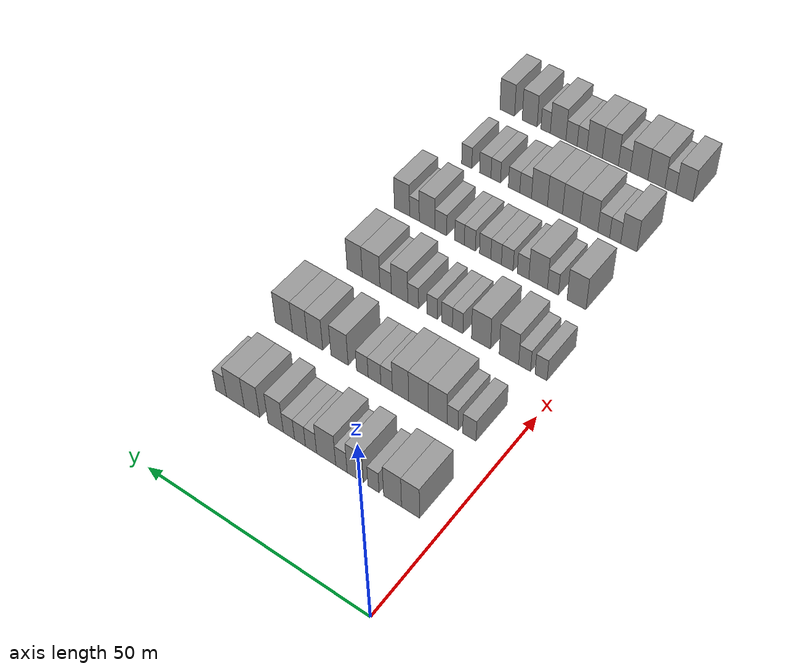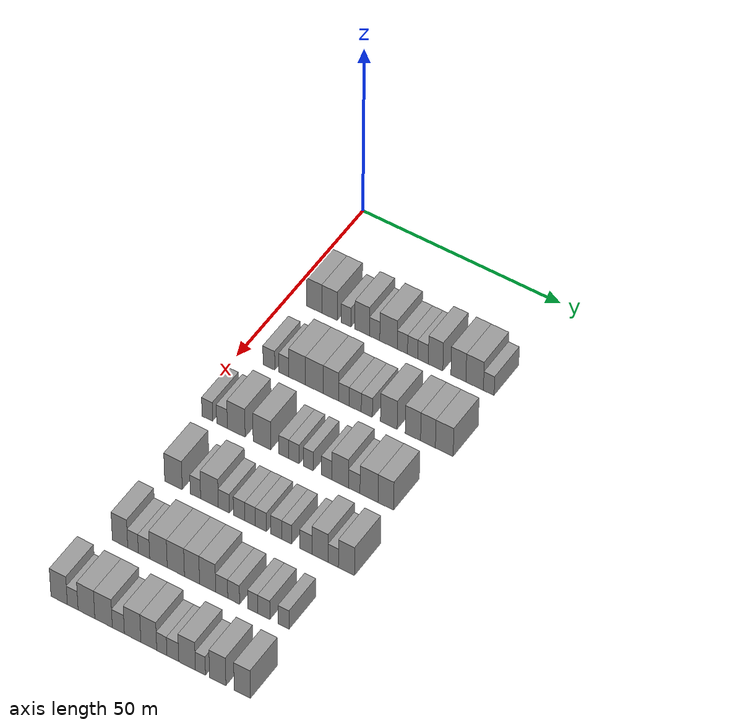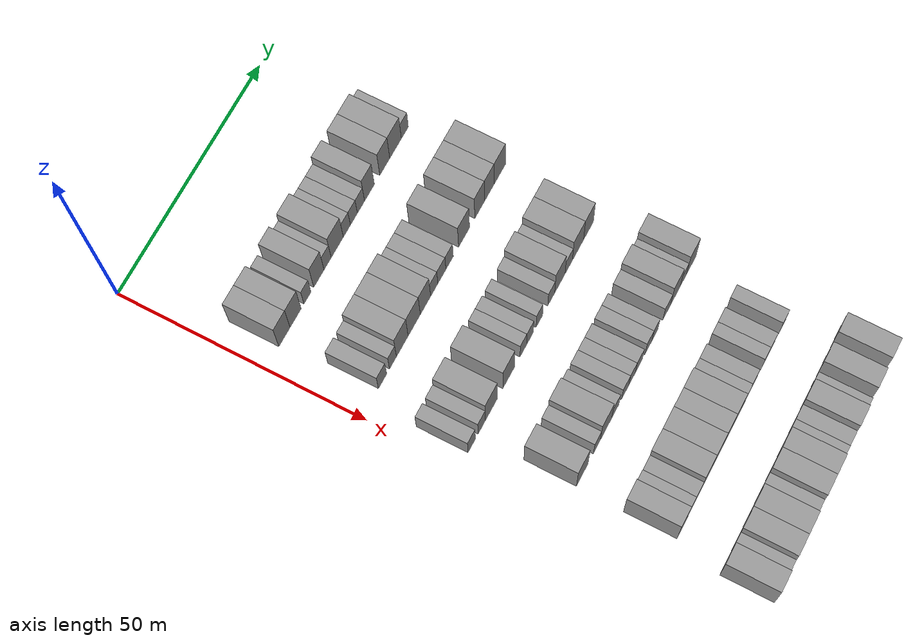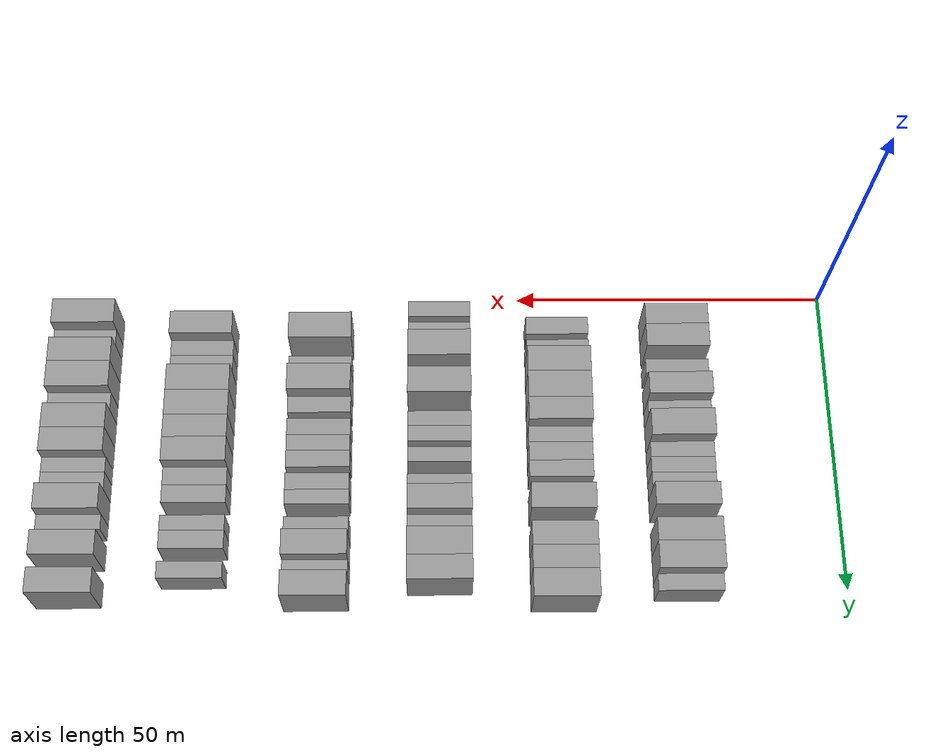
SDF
<sdf version="1.6">
 <world name="default">
  <model name="building_89">
   <static>1</static>
   <pose>25.0000 6.5976 0 0.000000 0.000000 0.000000</pose>
   <link name="link">
    <pose>0 0 4.50 0 0 0</pose>
    <collision name="collision"><geometry><box><size>10.0000 3.9193 9.0000</size></box></geometry></collision>
    <visual name="visual">
     <cast_shadows>0</cast_shadows>
     <geometry><box><size>10.0000 3.9193 9.0000</size></box></geometry>
     <material>
      <script>
       <uri>model://grey_wall/materials/scripts</uri>
       <uri>model://grey_wall/materials/textures</uri>
       <name>vrc/grey_wall</name>
      </script>
     </material>
    </visual>
   </link>
  </model>
  <model name="building_90">
   <static>1</static>
   <pose>25.0000 10.5213 0 0.000000 0.000000 0.000000</pose>
   <link name="link">
    <pose>0 0 4.50 0 0 0</pose>
    <collision name="collision"><geometry><box><size>10.0000 3.9281 9.0000</size></box></geometry></collision>
    <visual name="visual">
     <cast_shadows>0</cast_shadows>
     <geometry><box><size>10.0000 3.9281 9.0000</size></box></geometry>
     <material>
      <script>
       <uri>model://grey_wall/materials/scripts</uri>
       <uri>model://grey_wall/materials/textures</uri>
       <name>vrc/grey_wall</name>
      </script>
     </material>
    </visual>
   </link>
  </model>
  <model name="building_91">
   <static>1</static>
   <pose>25.0000 14.7238 0 0.000000 0.000000 0.000000</pose>
   <link name="link">
    <pose>0 0 3.00 0 0 0</pose>
    <collision name="collision"><geometry><box><size>10.0000 2.4768 6.0000</size></box></geometry></collision>
    <visual name="visual">
     <cast_shadows>0</cast_shadows>
     <geometry><box><size>10.0000 2.4768 6.0000</size></box></geometry>
     <material>
      <script>
       <uri>model://grey_wall/materials/scripts</uri>
       <uri>model://grey_wall/materials/textures</uri>
       <name>vrc/grey_wall</name>
      </script>
     </material>
    </visual>
   </link>
  </model>
  <model name="building_92">
   <static>1</static>
   <pose>25.0000 18.7980 0 0.000000 0.000000 0.000000</pose>
   <link name="link">
    <pose>0 0 4.50 0 0 0</pose>
    <collision name="collision"><geometry><box><size>10.0000 3.6717 9.0000</size></box></geometry></collision>
    <visual name="visual">
     <cast_shadows>0</cast_shadows>
     <geometry><box><size>10.0000 3.6717 9.0000</size></box></geometry>
     <material>
      <script>
       <uri>model://grey_wall/materials/scripts</uri>
       <uri>model://grey_wall/materials/textures</uri>
       <name>vrc/grey_wall</name>
      </script>
     </material>
    </visual>
   </link>
  </model>
  <model name="building_93">
   <static>1</static>
   <pose>25.0000 21.9282 0 0.000000 0.000000 0.000000</pose>
   <link name="link">
    <pose>0 0 3.00 0 0 0</pose>
    <collision name="collision"><geometry><box><size>10.0000 2.5887 6.0000</size></box></geometry></collision>
    <visual name="visual">
     <cast_shadows>0</cast_shadows>
     <geometry><box><size>10.0000 2.5887 6.0000</size></box></geometry>
     <material>
      <script>
       <uri>model://grey_wall/materials/scripts</uri>
       <uri>model://grey_wall/materials/textures</uri>
       <name>vrc/grey_wall</name>
      </script>
     </material>
    </visual>
   </link>
  </model>
  <model name="building_94">
   <static>1</static>
   <pose>25.0000 25.4164 0 0.000000 0.000000 0.000000</pose>
   <link name="link">
    <pose>0 0 4.50 0 0 0</pose>
    <collision name="collision"><geometry><box><size>10.0000 4.3876 9.0000</size></box></geometry></collision>
    <visual name="visual">
     <cast_shadows>0</cast_shadows>
     <geometry><box><size>10.0000 4.3876 9.0000</size></box></geometry>
     <material>
      <script>
       <uri>model://grey_wall/materials/scripts</uri>
       <uri>model://grey_wall/materials/textures</uri>
       <name>vrc/grey_wall</name>
      </script>
     </material>
    </visual>
   </link>
  </model>
  <model name="building_95">
   <static>1</static>
   <pose>25.0000 28.9024 0 0.000000 0.000000 0.000000</pose>
   <link name="link">
    <pose>0 0 3.00 0 0 0</pose>
    <collision name="collision"><geometry><box><size>10.0000 2.5844 6.0000</size></box></geometry></collision>
    <visual name="visual">
     <cast_shadows>0</cast_shadows>
     <geometry><box><size>10.0000 2.5844 6.0000</size></box></geometry>
     <material>
      <script>
       <uri>model://grey_wall/materials/scripts</uri>
       <uri>model://grey_wall/materials/textures</uri>
       <name>vrc/grey_wall</name>
      </script>
     </material>
    </visual>
   </link>
  </model>
  <model name="building_96">
   <static>1</static>
   <pose>25.0000 31.4725 0 0.000000 0.000000 0.000000</pose>
   <link name="link">
    <pose>0 0 3.00 0 0 0</pose>
    <collision name="collision"><geometry><box><size>10.0000 2.5557 6.0000</size></box></geometry></collision>
    <visual name="visual">
     <cast_shadows>0</cast_shadows>
     <geometry><box><size>10.0000 2.5557 6.0000</size></box></geometry>
     <material>
      <script>
       <uri>model://grey_wall/materials/scripts</uri>
       <uri>model://grey_wall/materials/textures</uri>
       <name>vrc/grey_wall</name>
      </script>
     </material>
    </visual>
   </link>
  </model>
  <model name="building_97">
   <static>1</static>
   <pose>25.0000 34.0715 0 0.000000 0.000000 0.000000</pose>
   <link name="link">
    <pose>0 0 3.00 0 0 0</pose>
    <collision name="collision"><geometry><box><size>10.0000 2.6424 6.0000</size></box></geometry></collision>
    <visual name="visual">
     <cast_shadows>0</cast_shadows>
     <geometry><box><size>10.0000 2.6424 6.0000</size></box></geometry>
     <material>
      <script>
       <uri>model://grey_wall/materials/scripts</uri>
       <uri>model://grey_wall/materials/textures</uri>
       <name>vrc/grey_wall</name>
      </script>
     </material>
    </visual>
   </link>
  </model>
  <model name="building_98">
   <static>1</static>
   <pose>25.0000 37.2081 0 0.000000 0.000000 0.000000</pose>
   <link name="link">
    <pose>0 0 4.50 0 0 0</pose>
    <collision name="collision"><geometry><box><size>10.0000 3.6308 9.0000</size></box></geometry></collision>
    <visual name="visual">
     <cast_shadows>0</cast_shadows>
     <geometry><box><size>10.0000 3.6308 9.0000</size></box></geometry>
     <material>
      <script>
       <uri>model://grey_wall/materials/scripts</uri>
       <uri>model://grey_wall/materials/textures</uri>
       <name>vrc/grey_wall</name>
      </script>
     </material>
    </visual>
   </link>
  </model>
  <model name="building_99">
   <static>1</static>
   <pose>25.0000 42.8859 0 0.000000 0.000000 0.000000</pose>
   <link name="link">
    <pose>0 0 4.50 0 0 0</pose>
    <collision name="collision"><geometry><box><size>10.0000 3.7246 9.0000</size></box></geometry></collision>
    <visual name="visual">
     <cast_shadows>0</cast_shadows>
     <geometry><box><size>10.0000 3.7246 9.0000</size></box></geometry>
     <material>
      <script>
       <uri>model://grey_wall/materials/scripts</uri>
       <uri>model://grey_wall/materials/textures</uri>
       <name>vrc/grey_wall</name>
      </script>
     </material>
    </visual>
   </link>
  </model>
  <model name="building_100">
   <static>1</static>
   <pose>25.0000 46.9236 0 0.000000 0.000000 0.000000</pose>
   <link name="link">
    <pose>0 0 4.50 0 0 0</pose>
    <collision name="collision"><geometry><box><size>10.0000 4.3510 9.0000</size></box></geometry></collision>
    <visual name="visual">
     <cast_shadows>0</cast_shadows>
     <geometry><box><size>10.0000 4.3510 9.0000</size></box></geometry>
     <material>
      <script>
       <uri>model://grey_wall/materials/scripts</uri>
       <uri>model://grey_wall/materials/textures</uri>
       <name>vrc/grey_wall</name>
      </script>
     </material>
    </visual>
   </link>
  </model>
  <model name="building_101">
   <static>1</static>
   <pose>25.0000 50.4262 0 0.000000 0.000000 0.000000</pose>
   <link name="link">
    <pose>0 0 3.00 0 0 0</pose>
    <collision name="collision"><geometry><box><size>10.0000 2.6542 6.0000</size></box></geometry></collision>
    <visual name="visual">
     <cast_shadows>0</cast_shadows>
     <geometry><box><size>10.0000 2.6542 6.0000</size></box></geometry>
     <material>
      <script>
       <uri>model://grey_wall/materials/scripts</uri>
       <uri>model://grey_wall/materials/textures</uri>
       <name>vrc/grey_wall</name>
      </script>
     </material>
    </visual>
   </link>
  </model>
  <model name="building_255">
   <static>1</static>
   <pose>44.0000 7.4499 0 0.000000 0.000000 0.000000</pose>
   <link name="link">
    <pose>0 0 3.00 0 0 0</pose>
    <collision name="collision"><geometry><box><size>10.0000 2.9787 6.0000</size></box></geometry></collision>
    <visual name="visual">
     <cast_shadows>0</cast_shadows>
     <geometry><box><size>10.0000 2.9787 6.0000</size></box></geometry>
     <material>
      <script>
       <uri>model://grey_wall/materials/scripts</uri>
       <uri>model://grey_wall/materials/textures</uri>
       <name>vrc/grey_wall</name>
      </script>
     </material>
    </visual>
   </link>
  </model>
  <model name="building_256">
   <static>1</static>
   <pose>44.0000 11.1920 0 0.000000 0.000000 0.000000</pose>
   <link name="link">
    <pose>0 0 3.00 0 0 0</pose>
    <collision name="collision"><geometry><box><size>10.0000 2.5054 6.0000</size></box></geometry></collision>
    <visual name="visual">
     <cast_shadows>0</cast_shadows>
     <geometry><box><size>10.0000 2.5054 6.0000</size></box></geometry>
     <material>
      <script>
       <uri>model://grey_wall/materials/scripts</uri>
       <uri>model://grey_wall/materials/textures</uri>
       <name>vrc/grey_wall</name>
      </script>
     </material>
    </visual>
   </link>
  </model>
  <model name="building_257">
   <static>1</static>
   <pose>44.0000 14.5626 0 0.000000 0.000000 0.000000</pose>
   <link name="link">
    <pose>0 0 4.50 0 0 0</pose>
    <collision name="collision"><geometry><box><size>10.0000 4.2358 9.0000</size></box></geometry></collision>
    <visual name="visual">
     <cast_shadows>0</cast_shadows>
     <geometry><box><size>10.0000 4.2358 9.0000</size></box></geometry>
     <material>
      <script>
       <uri>model://grey_wall/materials/scripts</uri>
       <uri>model://grey_wall/materials/textures</uri>
       <name>vrc/grey_wall</name>
      </script>
     </material>
    </visual>
   </link>
  </model>
  <model name="building_258">
   <static>1</static>
   <pose>44.0000 18.9139 0 0.000000 0.000000 0.000000</pose>
   <link name="link">
    <pose>0 0 4.50 0 0 0</pose>
    <collision name="collision"><geometry><box><size>10.0000 4.4668 9.0000</size></box></geometry></collision>
    <visual name="visual">
     <cast_shadows>0</cast_shadows>
     <geometry><box><size>10.0000 4.4668 9.0000</size></box></geometry>
     <material>
      <script>
       <uri>model://grey_wall/materials/scripts</uri>
       <uri>model://grey_wall/materials/textures</uri>
       <name>vrc/grey_wall</name>
      </script>
     </material>
    </visual>
   </link>
  </model>
  <model name="building_259">
   <static>1</static>
   <pose>44.0000 23.0418 0 0.000000 0.000000 0.000000</pose>
   <link name="link">
    <pose>0 0 4.50 0 0 0</pose>
    <collision name="collision"><geometry><box><size>10.0000 3.7891 9.0000</size></box></geometry></collision>
    <visual name="visual">
     <cast_shadows>0</cast_shadows>
     <geometry><box><size>10.0000 3.7891 9.0000</size></box></geometry>
     <material>
      <script>
       <uri>model://grey_wall/materials/scripts</uri>
       <uri>model://grey_wall/materials/textures</uri>
       <name>vrc/grey_wall</name>
      </script>
     </material>
    </visual>
   </link>
  </model>
  <model name="building_260">
   <static>1</static>
   <pose>44.0000 26.2802 0 0.000000 0.000000 0.000000</pose>
   <link name="link">
    <pose>0 0 3.00 0 0 0</pose>
    <collision name="collision"><geometry><box><size>10.0000 2.6877 6.0000</size></box></geometry></collision>
    <visual name="visual">
     <cast_shadows>0</cast_shadows>
     <geometry><box><size>10.0000 2.6877 6.0000</size></box></geometry>
     <material>
      <script>
       <uri>model://grey_wall/materials/scripts</uri>
       <uri>model://grey_wall/materials/textures</uri>
       <name>vrc/grey_wall</name>
      </script>
     </material>
    </visual>
   </link>
  </model>
  <model name="building_261">
   <static>1</static>
   <pose>44.0000 29.1234 0 0.000000 0.000000 0.000000</pose>
   <link name="link">
    <pose>0 0 3.00 0 0 0</pose>
    <collision name="collision"><geometry><box><size>10.0000 2.9987 6.0000</size></box></geometry></collision>
    <visual name="visual">
     <cast_shadows>0</cast_shadows>
     <geometry><box><size>10.0000 2.9987 6.0000</size></box></geometry>
     <material>
      <script>
       <uri>model://grey_wall/materials/scripts</uri>
       <uri>model://grey_wall/materials/textures</uri>
       <name>vrc/grey_wall</name>
      </script>
     </material>
    </visual>
   </link>
  </model>
  <model name="building_262">
   <static>1</static>
   <pose>44.0000 32.0087 0 0.000000 0.000000 0.000000</pose>
   <link name="link">
    <pose>0 0 3.00 0 0 0</pose>
    <collision name="collision"><geometry><box><size>10.0000 2.7720 6.0000</size></box></geometry></collision>
    <visual name="visual">
     <cast_shadows>0</cast_shadows>
     <geometry><box><size>10.0000 2.7720 6.0000</size></box></geometry>
     <material>
      <script>
       <uri>model://grey_wall/materials/scripts</uri>
       <uri>model://grey_wall/materials/textures</uri>
       <name>vrc/grey_wall</name>
      </script>
     </material>
    </visual>
   </link>
  </model>
  <model name="building_263">
   <static>1</static>
   <pose>44.0000 37.4664 0 0.000000 0.000000 0.000000</pose>
   <link name="link">
    <pose>0 0 4.50 0 0 0</pose>
    <collision name="collision"><geometry><box><size>10.0000 4.1434 9.0000</size></box></geometry></collision>
    <visual name="visual">
     <cast_shadows>0</cast_shadows>
     <geometry><box><size>10.0000 4.1434 9.0000</size></box></geometry>
     <material>
      <script>
       <uri>model://grey_wall/materials/scripts</uri>
       <uri>model://grey_wall/materials/textures</uri>
       <name>vrc/grey_wall</name>
      </script>
     </material>
    </visual>
   </link>
  </model>
  <model name="building_264">
   <static>1</static>
   <pose>44.0000 43.4358 0 0.000000 0.000000 0.000000</pose>
   <link name="link">
    <pose>0 0 4.50 0 0 0</pose>
    <collision name="collision"><geometry><box><size>10.0000 3.7956 9.0000</size></box></geometry></collision>
    <visual name="visual">
     <cast_shadows>0</cast_shadows>
     <geometry><box><size>10.0000 3.7956 9.0000</size></box></geometry>
     <material>
      <script>
       <uri>model://grey_wall/materials/scripts</uri>
       <uri>model://grey_wall/materials/textures</uri>
       <name>vrc/grey_wall</name>
      </script>
     </material>
    </visual>
   </link>
  </model>
  <model name="building_265">
   <static>1</static>
   <pose>44.0000 47.1627 0 0.000000 0.000000 0.000000</pose>
   <link name="link">
    <pose>0 0 4.50 0 0 0</pose>
    <collision name="collision"><geometry><box><size>10.0000 3.6581 9.0000</size></box></geometry></collision>
    <visual name="visual">
     <cast_shadows>0</cast_shadows>
     <geometry><box><size>10.0000 3.6581 9.0000</size></box></geometry>
     <material>
      <script>
       <uri>model://grey_wall/materials/scripts</uri>
       <uri>model://grey_wall/materials/textures</uri>
       <name>vrc/grey_wall</name>
      </script>
     </material>
    </visual>
   </link>
  </model>
  <model name="building_266">
   <static>1</static>
   <pose>44.0000 51.1775 0 0.000000 0.000000 0.000000</pose>
   <link name="link">
    <pose>0 0 4.50 0 0 0</pose>
    <collision name="collision"><geometry><box><size>10.0000 4.3716 9.0000</size></box></geometry></collision>
    <visual name="visual">
     <cast_shadows>0</cast_shadows>
     <geometry><box><size>10.0000 4.3716 9.0000</size></box></geometry>
     <material>
      <script>
       <uri>model://grey_wall/materials/scripts</uri>
       <uri>model://grey_wall/materials/textures</uri>
       <name>vrc/grey_wall</name>
      </script>
     </material>
    </visual>
   </link>
  </model>
  <model name="building_431">
   <static>1</static>
   <pose>63.0000 4.3893 0 0.000000 0.000000 0.000000</pose>
   <link name="link">
    <pose>0 0 3.00 0 0 0</pose>
    <collision name="collision"><geometry><box><size>10.0000 2.6916 6.0000</size></box></geometry></collision>
    <visual name="visual">
     <cast_shadows>0</cast_shadows>
     <geometry><box><size>10.0000 2.6916 6.0000</size></box></geometry>
     <material>
      <script>
       <uri>model://grey_wall/materials/scripts</uri>
       <uri>model://grey_wall/materials/textures</uri>
       <name>vrc/grey_wall</name>
      </script>
     </material>
    </visual>
   </link>
  </model>
  <model name="building_432">
   <static>1</static>
   <pose>63.0000 8.0834 0 0.000000 0.000000 0.000000</pose>
   <link name="link">
    <pose>0 0 3.00 0 0 0</pose>
    <collision name="collision"><geometry><box><size>10.0000 2.6966 6.0000</size></box></geometry></collision>
    <visual name="visual">
     <cast_shadows>0</cast_shadows>
     <geometry><box><size>10.0000 2.6966 6.0000</size></box></geometry>
     <material>
      <script>
       <uri>model://grey_wall/materials/scripts</uri>
       <uri>model://grey_wall/materials/textures</uri>
       <name>vrc/grey_wall</name>
      </script>
     </material>
    </visual>
   </link>
  </model>
  <model name="building_433">
   <static>1</static>
   <pose>63.0000 11.6560 0 0.000000 0.000000 0.000000</pose>
   <link name="link">
    <pose>0 0 4.50 0 0 0</pose>
    <collision name="collision"><geometry><box><size>10.0000 4.4484 9.0000</size></box></geometry></collision>
    <visual name="visual">
     <cast_shadows>0</cast_shadows>
     <geometry><box><size>10.0000 4.4484 9.0000</size></box></geometry>
     <material>
      <script>
       <uri>model://grey_wall/materials/scripts</uri>
       <uri>model://grey_wall/materials/textures</uri>
       <name>vrc/grey_wall</name>
      </script>
     </material>
    </visual>
   </link>
  </model>
  <model name="building_434">
   <static>1</static>
   <pose>63.0000 18.0917 0 0.000000 0.000000 0.000000</pose>
   <link name="link">
    <pose>0 0 4.50 0 0 0</pose>
    <collision name="collision"><geometry><box><size>10.0000 4.4231 9.0000</size></box></geometry></collision>
    <visual name="visual">
     <cast_shadows>0</cast_shadows>
     <geometry><box><size>10.0000 4.4231 9.0000</size></box></geometry>
     <material>
      <script>
       <uri>model://grey_wall/materials/scripts</uri>
       <uri>model://grey_wall/materials/textures</uri>
       <name>vrc/grey_wall</name>
      </script>
     </material>
    </visual>
   </link>
  </model>
  <model name="building_435">
   <static>1</static>
   <pose>63.0000 23.5532 0 0.000000 0.000000 0.000000</pose>
   <link name="link">
    <pose>0 0 3.00 0 0 0</pose>
    <collision name="collision"><geometry><box><size>10.0000 2.4999 6.0000</size></box></geometry></collision>
    <visual name="visual">
     <cast_shadows>0</cast_shadows>
     <geometry><box><size>10.0000 2.4999 6.0000</size></box></geometry>
     <material>
      <script>
       <uri>model://grey_wall/materials/scripts</uri>
       <uri>model://grey_wall/materials/textures</uri>
       <name>vrc/grey_wall</name>
      </script>
     </material>
    </visual>
   </link>
  </model>
  <model name="building_436">
   <static>1</static>
   <pose>63.0000 26.0967 0 0.000000 0.000000 0.000000</pose>
   <link name="link">
    <pose>0 0 3.00 0 0 0</pose>
    <collision name="collision"><geometry><box><size>10.0000 2.5871 6.0000</size></box></geometry></collision>
    <visual name="visual">
     <cast_shadows>0</cast_shadows>
     <geometry><box><size>10.0000 2.5871 6.0000</size></box></geometry>
     <material>
      <script>
       <uri>model://grey_wall/materials/scripts</uri>
       <uri>model://grey_wall/materials/textures</uri>
       <name>vrc/grey_wall</name>
      </script>
     </material>
    </visual>
   </link>
  </model>
  <model name="building_437">
   <static>1</static>
   <pose>63.0000 29.6369 0 0.000000 0.000000 0.000000</pose>
   <link name="link">
    <pose>0 0 3.00 0 0 0</pose>
    <collision name="collision"><geometry><box><size>10.0000 2.4933 6.0000</size></box></geometry></collision>
    <visual name="visual">
     <cast_shadows>0</cast_shadows>
     <geometry><box><size>10.0000 2.4933 6.0000</size></box></geometry>
     <material>
      <script>
       <uri>model://grey_wall/materials/scripts</uri>
       <uri>model://grey_wall/materials/textures</uri>
       <name>vrc/grey_wall</name>
      </script>
     </material>
    </visual>
   </link>
  </model>
  <model name="building_438">
   <static>1</static>
   <pose>63.0000 34.2039 0 0.000000 0.000000 0.000000</pose>
   <link name="link">
    <pose>0 0 3.00 0 0 0</pose>
    <collision name="collision"><geometry><box><size>10.0000 2.6408 6.0000</size></box></geometry></collision>
    <visual name="visual">
     <cast_shadows>0</cast_shadows>
     <geometry><box><size>10.0000 2.6408 6.0000</size></box></geometry>
     <material>
      <script>
       <uri>model://grey_wall/materials/scripts</uri>
       <uri>model://grey_wall/materials/textures</uri>
       <name>vrc/grey_wall</name>
      </script>
     </material>
    </visual>
   </link>
  </model>
  <model name="building_439">
   <static>1</static>
   <pose>63.0000 37.5280 0 0.000000 0.000000 0.000000</pose>
   <link name="link">
    <pose>0 0 4.50 0 0 0</pose>
    <collision name="collision"><geometry><box><size>10.0000 4.0073 9.0000</size></box></geometry></collision>
    <visual name="visual">
     <cast_shadows>0</cast_shadows>
     <geometry><box><size>10.0000 4.0073 9.0000</size></box></geometry>
     <material>
      <script>
       <uri>model://grey_wall/materials/scripts</uri>
       <uri>model://grey_wall/materials/textures</uri>
       <name>vrc/grey_wall</name>
      </script>
     </material>
    </visual>
   </link>
  </model>
  <model name="building_440">
   <static>1</static>
   <pose>63.0000 40.9610 0 0.000000 0.000000 0.000000</pose>
   <link name="link">
    <pose>0 0 3.00 0 0 0</pose>
    <collision name="collision"><geometry><box><size>10.0000 2.8586 6.0000</size></box></geometry></collision>
    <visual name="visual">
     <cast_shadows>0</cast_shadows>
     <geometry><box><size>10.0000 2.8586 6.0000</size></box></geometry>
     <material>
      <script>
       <uri>model://grey_wall/materials/scripts</uri>
       <uri>model://grey_wall/materials/textures</uri>
       <name>vrc/grey_wall</name>
      </script>
     </material>
    </visual>
   </link>
  </model>
  <model name="building_441">
   <static>1</static>
   <pose>63.0000 44.5994 0 0.000000 0.000000 0.000000</pose>
   <link name="link">
    <pose>0 0 4.50 0 0 0</pose>
    <collision name="collision"><geometry><box><size>10.0000 4.4182 9.0000</size></box></geometry></collision>
    <visual name="visual">
     <cast_shadows>0</cast_shadows>
     <geometry><box><size>10.0000 4.4182 9.0000</size></box></geometry>
     <material>
      <script>
       <uri>model://grey_wall/materials/scripts</uri>
       <uri>model://grey_wall/materials/textures</uri>
       <name>vrc/grey_wall</name>
      </script>
     </material>
    </visual>
   </link>
  </model>
  <model name="building_442">
   <static>1</static>
   <pose>63.0000 48.7340 0 0.000000 0.000000 0.000000</pose>
   <link name="link">
    <pose>0 0 4.50 0 0 0</pose>
    <collision name="collision"><geometry><box><size>10.0000 3.8511 9.0000</size></box></geometry></collision>
    <visual name="visual">
     <cast_shadows>0</cast_shadows>
     <geometry><box><size>10.0000 3.8511 9.0000</size></box></geometry>
     <material>
      <script>
       <uri>model://grey_wall/materials/scripts</uri>
       <uri>model://grey_wall/materials/textures</uri>
       <name>vrc/grey_wall</name>
      </script>
     </material>
    </visual>
   </link>
  </model>
  <model name="building_614">
   <static>1</static>
   <pose>82.0000 8.5472 0 0.000000 0.000000 0.000000</pose>
   <link name="link">
    <pose>0 0 4.50 0 0 0</pose>
    <collision name="collision"><geometry><box><size>10.0000 4.3812 9.0000</size></box></geometry></collision>
    <visual name="visual">
     <cast_shadows>0</cast_shadows>
     <geometry><box><size>10.0000 4.3812 9.0000</size></box></geometry>
     <material>
      <script>
       <uri>model://grey_wall/materials/scripts</uri>
       <uri>model://grey_wall/materials/textures</uri>
       <name>vrc/grey_wall</name>
      </script>
     </material>
    </visual>
   </link>
  </model>
  <model name="building_615">
   <static>1</static>
   <pose>82.0000 14.0297 0 0.000000 0.000000 0.000000</pose>
   <link name="link">
    <pose>0 0 3.00 0 0 0</pose>
    <collision name="collision"><geometry><box><size>10.0000 2.5837 6.0000</size></box></geometry></collision>
    <visual name="visual">
     <cast_shadows>0</cast_shadows>
     <geometry><box><size>10.0000 2.5837 6.0000</size></box></geometry>
     <material>
      <script>
       <uri>model://grey_wall/materials/scripts</uri>
       <uri>model://grey_wall/materials/textures</uri>
       <name>vrc/grey_wall</name>
      </script>
     </material>
    </visual>
   </link>
  </model>
  <model name="building_616">
   <static>1</static>
   <pose>82.0000 17.5222 0 0.000000 0.000000 0.000000</pose>
   <link name="link">
    <pose>0 0 4.50 0 0 0</pose>
    <collision name="collision"><geometry><box><size>10.0000 4.4014 9.0000</size></box></geometry></collision>
    <visual name="visual">
     <cast_shadows>0</cast_shadows>
     <geometry><box><size>10.0000 4.4014 9.0000</size></box></geometry>
     <material>
      <script>
       <uri>model://grey_wall/materials/scripts</uri>
       <uri>model://grey_wall/materials/textures</uri>
       <name>vrc/grey_wall</name>
      </script>
     </material>
    </visual>
   </link>
  </model>
  <model name="building_617">
   <static>1</static>
   <pose>82.0000 21.1062 0 0.000000 0.000000 0.000000</pose>
   <link name="link">
    <pose>0 0 3.00 0 0 0</pose>
    <collision name="collision"><geometry><box><size>10.0000 2.7667 6.0000</size></box></geometry></collision>
    <visual name="visual">
     <cast_shadows>0</cast_shadows>
     <geometry><box><size>10.0000 2.7667 6.0000</size></box></geometry>
     <material>
      <script>
       <uri>model://grey_wall/materials/scripts</uri>
       <uri>model://grey_wall/materials/textures</uri>
       <name>vrc/grey_wall</name>
      </script>
     </material>
    </visual>
   </link>
  </model>
  <model name="building_618">
   <static>1</static>
   <pose>82.0000 24.8997 0 0.000000 0.000000 0.000000</pose>
   <link name="link">
    <pose>0 0 3.00 0 0 0</pose>
    <collision name="collision"><geometry><box><size>10.0000 2.8203 6.0000</size></box></geometry></collision>
    <visual name="visual">
     <cast_shadows>0</cast_shadows>
     <geometry><box><size>10.0000 2.8203 6.0000</size></box></geometry>
     <material>
      <script>
       <uri>model://grey_wall/materials/scripts</uri>
       <uri>model://grey_wall/materials/textures</uri>
       <name>vrc/grey_wall</name>
      </script>
     </material>
    </visual>
   </link>
  </model>
  <model name="building_619">
   <static>1</static>
   <pose>82.0000 27.5979 0 0.000000 0.000000 0.000000</pose>
   <link name="link">
    <pose>0 0 3.00 0 0 0</pose>
    <collision name="collision"><geometry><box><size>10.0000 2.5760 6.0000</size></box></geometry></collision>
    <visual name="visual">
     <cast_shadows>0</cast_shadows>
     <geometry><box><size>10.0000 2.5760 6.0000</size></box></geometry>
     <material>
      <script>
       <uri>model://grey_wall/materials/scripts</uri>
       <uri>model://grey_wall/materials/textures</uri>
       <name>vrc/grey_wall</name>
      </script>
     </material>
    </visual>
   </link>
  </model>
  <model name="building_620">
   <static>1</static>
   <pose>82.0000 30.2731 0 0.000000 0.000000 0.000000</pose>
   <link name="link">
    <pose>0 0 3.00 0 0 0</pose>
    <collision name="collision"><geometry><box><size>10.0000 2.7744 6.0000</size></box></geometry></collision>
    <visual name="visual">
     <cast_shadows>0</cast_shadows>
     <geometry><box><size>10.0000 2.7744 6.0000</size></box></geometry>
     <material>
      <script>
       <uri>model://grey_wall/materials/scripts</uri>
       <uri>model://grey_wall/materials/textures</uri>
       <name>vrc/grey_wall</name>
      </script>
     </material>
    </visual>
   </link>
  </model>
  <model name="building_621">
   <static>1</static>
   <pose>82.0000 34.0211 0 0.000000 0.000000 0.000000</pose>
   <link name="link">
    <pose>0 0 3.00 0 0 0</pose>
    <collision name="collision"><geometry><box><size>10.0000 2.7216 6.0000</size></box></geometry></collision>
    <visual name="visual">
     <cast_shadows>0</cast_shadows>
     <geometry><box><size>10.0000 2.7216 6.0000</size></box></geometry>
     <material>
      <script>
       <uri>model://grey_wall/materials/scripts</uri>
       <uri>model://grey_wall/materials/textures</uri>
       <name>vrc/grey_wall</name>
      </script>
     </material>
    </visual>
   </link>
  </model>
  <model name="building_622">
   <static>1</static>
   <pose>82.0000 36.5833 0 0.000000 0.000000 0.000000</pose>
   <link name="link">
    <pose>0 0 3.00 0 0 0</pose>
    <collision name="collision"><geometry><box><size>10.0000 2.4027 6.0000</size></box></geometry></collision>
    <visual name="visual">
     <cast_shadows>0</cast_shadows>
     <geometry><box><size>10.0000 2.4027 6.0000</size></box></geometry>
     <material>
      <script>
       <uri>model://grey_wall/materials/scripts</uri>
       <uri>model://grey_wall/materials/textures</uri>
       <name>vrc/grey_wall</name>
      </script>
     </material>
    </visual>
   </link>
  </model>
  <model name="building_623">
   <static>1</static>
   <pose>82.0000 41.2823 0 0.000000 0.000000 0.000000</pose>
   <link name="link">
    <pose>0 0 3.00 0 0 0</pose>
    <collision name="collision"><geometry><box><size>10.0000 2.9954 6.0000</size></box></geometry></collision>
    <visual name="visual">
     <cast_shadows>0</cast_shadows>
     <geometry><box><size>10.0000 2.9954 6.0000</size></box></geometry>
     <material>
      <script>
       <uri>model://grey_wall/materials/scripts</uri>
       <uri>model://grey_wall/materials/textures</uri>
       <name>vrc/grey_wall</name>
      </script>
     </material>
    </visual>
   </link>
  </model>
  <model name="building_624">
   <static>1</static>
   <pose>82.0000 44.7622 0 0.000000 0.000000 0.000000</pose>
   <link name="link">
    <pose>0 0 4.50 0 0 0</pose>
    <collision name="collision"><geometry><box><size>10.0000 3.9644 9.0000</size></box></geometry></collision>
    <visual name="visual">
     <cast_shadows>0</cast_shadows>
     <geometry><box><size>10.0000 3.9644 9.0000</size></box></geometry>
     <material>
      <script>
       <uri>model://grey_wall/materials/scripts</uri>
       <uri>model://grey_wall/materials/textures</uri>
       <name>vrc/grey_wall</name>
      </script>
     </material>
    </visual>
   </link>
  </model>
  <model name="building_625">
   <static>1</static>
   <pose>82.0000 47.9828 0 0.000000 0.000000 0.000000</pose>
   <link name="link">
    <pose>0 0 3.00 0 0 0</pose>
    <collision name="collision"><geometry><box><size>10.0000 2.4769 6.0000</size></box></geometry></collision>
    <visual name="visual">
     <cast_shadows>0</cast_shadows>
     <geometry><box><size>10.0000 2.4769 6.0000</size></box></geometry>
     <material>
      <script>
       <uri>model://grey_wall/materials/scripts</uri>
       <uri>model://grey_wall/materials/textures</uri>
       <name>vrc/grey_wall</name>
      </script>
     </material>
    </visual>
   </link>
  </model>
  <model name="building_626">
   <static>1</static>
   <pose>82.0000 51.1913 0 0.000000 0.000000 0.000000</pose>
   <link name="link">
    <pose>0 0 4.50 0 0 0</pose>
    <collision name="collision"><geometry><box><size>10.0000 3.9401 9.0000</size></box></geometry></collision>
    <visual name="visual">
     <cast_shadows>0</cast_shadows>
     <geometry><box><size>10.0000 3.9401 9.0000</size></box></geometry>
     <material>
      <script>
       <uri>model://grey_wall/materials/scripts</uri>
       <uri>model://grey_wall/materials/textures</uri>
       <name>vrc/grey_wall</name>
      </script>
     </material>
    </visual>
   </link>
  </model>
  <model name="building_793">
   <static>1</static>
   <pose>101.0000 8.0394 0 0.000000 0.000000 0.000000</pose>
   <link name="link">
    <pose>0 0 4.50 0 0 0</pose>
    <collision name="collision"><geometry><box><size>10.0000 3.8217 9.0000</size></box></geometry></collision>
    <visual name="visual">
     <cast_shadows>0</cast_shadows>
     <geometry><box><size>10.0000 3.8217 9.0000</size></box></geometry>
     <material>
      <script>
       <uri>model://grey_wall/materials/scripts</uri>
       <uri>model://grey_wall/materials/textures</uri>
       <name>vrc/grey_wall</name>
      </script>
     </material>
    </visual>
   </link>
  </model>
  <model name="building_794">
   <static>1</static>
   <pose>101.0000 11.2678 0 0.000000 0.000000 0.000000</pose>
   <link name="link">
    <pose>0 0 3.00 0 0 0</pose>
    <collision name="collision"><geometry><box><size>10.0000 2.6349 6.0000</size></box></geometry></collision>
    <visual name="visual">
     <cast_shadows>0</cast_shadows>
     <geometry><box><size>10.0000 2.6349 6.0000</size></box></geometry>
     <material>
      <script>
       <uri>model://grey_wall/materials/scripts</uri>
       <uri>model://grey_wall/materials/textures</uri>
       <name>vrc/grey_wall</name>
      </script>
     </material>
    </visual>
   </link>
  </model>
  <model name="building_795">
   <static>1</static>
   <pose>101.0000 13.9943 0 0.000000 0.000000 0.000000</pose>
   <link name="link">
    <pose>0 0 3.00 0 0 0</pose>
    <collision name="collision"><geometry><box><size>10.0000 2.8181 6.0000</size></box></geometry></collision>
    <visual name="visual">
     <cast_shadows>0</cast_shadows>
     <geometry><box><size>10.0000 2.8181 6.0000</size></box></geometry>
     <material>
      <script>
       <uri>model://grey_wall/materials/scripts</uri>
       <uri>model://grey_wall/materials/textures</uri>
       <name>vrc/grey_wall</name>
      </script>
     </material>
    </visual>
   </link>
  </model>
  <model name="building_796">
   <static>1</static>
   <pose>101.0000 17.5670 0 0.000000 0.000000 0.000000</pose>
   <link name="link">
    <pose>0 0 4.50 0 0 0</pose>
    <collision name="collision"><geometry><box><size>10.0000 4.3274 9.0000</size></box></geometry></collision>
    <visual name="visual">
     <cast_shadows>0</cast_shadows>
     <geometry><box><size>10.0000 4.3274 9.0000</size></box></geometry>
     <material>
      <script>
       <uri>model://grey_wall/materials/scripts</uri>
       <uri>model://grey_wall/materials/textures</uri>
       <name>vrc/grey_wall</name>
      </script>
     </material>
    </visual>
   </link>
  </model>
  <model name="building_797">
   <static>1</static>
   <pose>101.0000 21.8519 0 0.000000 0.000000 0.000000</pose>
   <link name="link">
    <pose>0 0 4.50 0 0 0</pose>
    <collision name="collision"><geometry><box><size>10.0000 4.2425 9.0000</size></box></geometry></collision>
    <visual name="visual">
     <cast_shadows>0</cast_shadows>
     <geometry><box><size>10.0000 4.2425 9.0000</size></box></geometry>
     <material>
      <script>
       <uri>model://grey_wall/materials/scripts</uri>
       <uri>model://grey_wall/materials/textures</uri>
       <name>vrc/grey_wall</name>
      </script>
     </material>
    </visual>
   </link>
  </model>
  <model name="building_798">
   <static>1</static>
   <pose>101.0000 25.8313 0 0.000000 0.000000 0.000000</pose>
   <link name="link">
    <pose>0 0 4.50 0 0 0</pose>
    <collision name="collision"><geometry><box><size>10.0000 3.7162 9.0000</size></box></geometry></collision>
    <visual name="visual">
     <cast_shadows>0</cast_shadows>
     <geometry><box><size>10.0000 3.7162 9.0000</size></box></geometry>
     <material>
      <script>
       <uri>model://grey_wall/materials/scripts</uri>
       <uri>model://grey_wall/materials/textures</uri>
       <name>vrc/grey_wall</name>
      </script>
     </material>
    </visual>
   </link>
  </model>
  <model name="building_799">
   <static>1</static>
   <pose>101.0000 29.6726 0 0.000000 0.000000 0.000000</pose>
   <link name="link">
    <pose>0 0 4.50 0 0 0</pose>
    <collision name="collision"><geometry><box><size>10.0000 3.9665 9.0000</size></box></geometry></collision>
    <visual name="visual">
     <cast_shadows>0</cast_shadows>
     <geometry><box><size>10.0000 3.9665 9.0000</size></box></geometry>
     <material>
      <script>
       <uri>model://grey_wall/materials/scripts</uri>
       <uri>model://grey_wall/materials/textures</uri>
       <name>vrc/grey_wall</name>
      </script>
     </material>
    </visual>
   </link>
  </model>
  <model name="building_800">
   <static>1</static>
   <pose>101.0000 33.1218 0 0.000000 0.000000 0.000000</pose>
   <link name="link">
    <pose>0 0 3.00 0 0 0</pose>
    <collision name="collision"><geometry><box><size>10.0000 2.9320 6.0000</size></box></geometry></collision>
    <visual name="visual">
     <cast_shadows>0</cast_shadows>
     <geometry><box><size>10.0000 2.9320 6.0000</size></box></geometry>
     <material>
      <script>
       <uri>model://grey_wall/materials/scripts</uri>
       <uri>model://grey_wall/materials/textures</uri>
       <name>vrc/grey_wall</name>
      </script>
     </material>
    </visual>
   </link>
  </model>
  <model name="building_801">
   <static>1</static>
   <pose>101.0000 36.0341 0 0.000000 0.000000 0.000000</pose>
   <link name="link">
    <pose>0 0 3.00 0 0 0</pose>
    <collision name="collision"><geometry><box><size>10.0000 2.8925 6.0000</size></box></geometry></collision>
    <visual name="visual">
     <cast_shadows>0</cast_shadows>
     <geometry><box><size>10.0000 2.8925 6.0000</size></box></geometry>
     <material>
      <script>
       <uri>model://grey_wall/materials/scripts</uri>
       <uri>model://grey_wall/materials/textures</uri>
       <name>vrc/grey_wall</name>
      </script>
     </material>
    </visual>
   </link>
  </model>
  <model name="building_802">
   <static>1</static>
   <pose>101.0000 40.6996 0 0.000000 0.000000 0.000000</pose>
   <link name="link">
    <pose>0 0 3.00 0 0 0</pose>
    <collision name="collision"><geometry><box><size>10.0000 2.4385 6.0000</size></box></geometry></collision>
    <visual name="visual">
     <cast_shadows>0</cast_shadows>
     <geometry><box><size>10.0000 2.4385 6.0000</size></box></geometry>
     <material>
      <script>
       <uri>model://grey_wall/materials/scripts</uri>
       <uri>model://grey_wall/materials/textures</uri>
       <name>vrc/grey_wall</name>
      </script>
     </material>
    </visual>
   </link>
  </model>
  <model name="building_803">
   <static>1</static>
   <pose>101.0000 43.3901 0 0.000000 0.000000 0.000000</pose>
   <link name="link">
    <pose>0 0 3.00 0 0 0</pose>
    <collision name="collision"><geometry><box><size>10.0000 2.9424 6.0000</size></box></geometry></collision>
    <visual name="visual">
     <cast_shadows>0</cast_shadows>
     <geometry><box><size>10.0000 2.9424 6.0000</size></box></geometry>
     <material>
      <script>
       <uri>model://grey_wall/materials/scripts</uri>
       <uri>model://grey_wall/materials/textures</uri>
       <name>vrc/grey_wall</name>
      </script>
     </material>
    </visual>
   </link>
  </model>
  <model name="building_804">
   <static>1</static>
   <pose>101.0000 48.1901 0 0.000000 0.000000 0.000000</pose>
   <link name="link">
    <pose>0 0 3.00 0 0 0</pose>
    <collision name="collision"><geometry><box><size>10.0000 2.6577 6.0000</size></box></geometry></collision>
    <visual name="visual">
     <cast_shadows>0</cast_shadows>
     <geometry><box><size>10.0000 2.6577 6.0000</size></box></geometry>
     <material>
      <script>
       <uri>model://grey_wall/materials/scripts</uri>
       <uri>model://grey_wall/materials/textures</uri>
       <name>vrc/grey_wall</name>
      </script>
     </material>
    </visual>
   </link>
  </model>
  <model name="building_966">
   <static>1</static>
   <pose>120.0000 5.9381 0 0.000000 0.000000 0.000000</pose>
   <link name="link">
    <pose>0 0 4.50 0 0 0</pose>
    <collision name="collision"><geometry><box><size>10.0000 4.0606 9.0000</size></box></geometry></collision>
    <visual name="visual">
     <cast_shadows>0</cast_shadows>
     <geometry><box><size>10.0000 4.0606 9.0000</size></box></geometry>
     <material>
      <script>
       <uri>model://grey_wall/materials/scripts</uri>
       <uri>model://grey_wall/materials/textures</uri>
       <name>vrc/grey_wall</name>
      </script>
     </material>
    </visual>
   </link>
  </model>
  <model name="building_967">
   <static>1</static>
   <pose>120.0000 9.2942 0 0.000000 0.000000 0.000000</pose>
   <link name="link">
    <pose>0 0 3.00 0 0 0</pose>
    <collision name="collision"><geometry><box><size>10.0000 2.6517 6.0000</size></box></geometry></collision>
    <visual name="visual">
     <cast_shadows>0</cast_shadows>
     <geometry><box><size>10.0000 2.6517 6.0000</size></box></geometry>
     <material>
      <script>
       <uri>model://grey_wall/materials/scripts</uri>
       <uri>model://grey_wall/materials/textures</uri>
       <name>vrc/grey_wall</name>
      </script>
     </material>
    </visual>
   </link>
  </model>
  <model name="building_968">
   <static>1</static>
   <pose>120.0000 12.6835 0 0.000000 0.000000 0.000000</pose>
   <link name="link">
    <pose>0 0 4.50 0 0 0</pose>
    <collision name="collision"><geometry><box><size>10.0000 4.1270 9.0000</size></box></geometry></collision>
    <visual name="visual">
     <cast_shadows>0</cast_shadows>
     <geometry><box><size>10.0000 4.1270 9.0000</size></box></geometry>
     <material>
      <script>
       <uri>model://grey_wall/materials/scripts</uri>
       <uri>model://grey_wall/materials/textures</uri>
       <name>vrc/grey_wall</name>
      </script>
     </material>
    </visual>
   </link>
  </model>
  <model name="building_969">
   <static>1</static>
   <pose>120.0000 16.8988 0 0.000000 0.000000 0.000000</pose>
   <link name="link">
    <pose>0 0 4.50 0 0 0</pose>
    <collision name="collision"><geometry><box><size>10.0000 4.3035 9.0000</size></box></geometry></collision>
    <visual name="visual">
     <cast_shadows>0</cast_shadows>
     <geometry><box><size>10.0000 4.3035 9.0000</size></box></geometry>
     <material>
      <script>
       <uri>model://grey_wall/materials/scripts</uri>
       <uri>model://grey_wall/materials/textures</uri>
       <name>vrc/grey_wall</name>
      </script>
     </material>
    </visual>
   </link>
  </model>
  <model name="building_970">
   <static>1</static>
   <pose>120.0000 20.5275 0 0.000000 0.000000 0.000000</pose>
   <link name="link">
    <pose>0 0 3.00 0 0 0</pose>
    <collision name="collision"><geometry><box><size>10.0000 2.9539 6.0000</size></box></geometry></collision>
    <visual name="visual">
     <cast_shadows>0</cast_shadows>
     <geometry><box><size>10.0000 2.9539 6.0000</size></box></geometry>
     <material>
      <script>
       <uri>model://grey_wall/materials/scripts</uri>
       <uri>model://grey_wall/materials/textures</uri>
       <name>vrc/grey_wall</name>
      </script>
     </material>
    </visual>
   </link>
  </model>
  <model name="building_971">
   <static>1</static>
   <pose>120.0000 24.0251 0 0.000000 0.000000 0.000000</pose>
   <link name="link">
    <pose>0 0 4.50 0 0 0</pose>
    <collision name="collision"><geometry><box><size>10.0000 4.0413 9.0000</size></box></geometry></collision>
    <visual name="visual">
     <cast_shadows>0</cast_shadows>
     <geometry><box><size>10.0000 4.0413 9.0000</size></box></geometry>
     <material>
      <script>
       <uri>model://grey_wall/materials/scripts</uri>
       <uri>model://grey_wall/materials/textures</uri>
       <name>vrc/grey_wall</name>
      </script>
     </material>
    </visual>
   </link>
  </model>
  <model name="building_972">
   <static>1</static>
   <pose>120.0000 27.9809 0 0.000000 0.000000 0.000000</pose>
   <link name="link">
    <pose>0 0 4.50 0 0 0</pose>
    <collision name="collision"><geometry><box><size>10.0000 3.8703 9.0000</size></box></geometry></collision>
    <visual name="visual">
     <cast_shadows>0</cast_shadows>
     <geometry><box><size>10.0000 3.8703 9.0000</size></box></geometry>
     <material>
      <script>
       <uri>model://grey_wall/materials/scripts</uri>
       <uri>model://grey_wall/materials/textures</uri>
       <name>vrc/grey_wall</name>
      </script>
     </material>
    </visual>
   </link>
  </model>
  <model name="building_973">
   <static>1</static>
   <pose>120.0000 31.1596 0 0.000000 0.000000 0.000000</pose>
   <link name="link">
    <pose>0 0 3.00 0 0 0</pose>
    <collision name="collision"><geometry><box><size>10.0000 2.4871 6.0000</size></box></geometry></collision>
    <visual name="visual">
     <cast_shadows>0</cast_shadows>
     <geometry><box><size>10.0000 2.4871 6.0000</size></box></geometry>
     <material>
      <script>
       <uri>model://grey_wall/materials/scripts</uri>
       <uri>model://grey_wall/materials/textures</uri>
       <name>vrc/grey_wall</name>
      </script>
     </material>
    </visual>
   </link>
  </model>
  <model name="building_974">
   <static>1</static>
   <pose>120.0000 33.8403 0 0.000000 0.000000 0.000000</pose>
   <link name="link">
    <pose>0 0 3.00 0 0 0</pose>
    <collision name="collision"><geometry><box><size>10.0000 2.8743 6.0000</size></box></geometry></collision>
    <visual name="visual">
     <cast_shadows>0</cast_shadows>
     <geometry><box><size>10.0000 2.8743 6.0000</size></box></geometry>
     <material>
      <script>
       <uri>model://grey_wall/materials/scripts</uri>
       <uri>model://grey_wall/materials/textures</uri>
       <name>vrc/grey_wall</name>
      </script>
     </material>
    </visual>
   </link>
  </model>
  <model name="building_975">
   <static>1</static>
   <pose>120.0000 37.2971 0 0.000000 0.000000 0.000000</pose>
   <link name="link">
    <pose>0 0 4.50 0 0 0</pose>
    <collision name="collision"><geometry><box><size>10.0000 4.0394 9.0000</size></box></geometry></collision>
    <visual name="visual">
     <cast_shadows>0</cast_shadows>
     <geometry><box><size>10.0000 4.0394 9.0000</size></box></geometry>
     <material>
      <script>
       <uri>model://grey_wall/materials/scripts</uri>
       <uri>model://grey_wall/materials/textures</uri>
       <name>vrc/grey_wall</name>
      </script>
     </material>
    </visual>
   </link>
  </model>
  <model name="building_976">
   <static>1</static>
   <pose>120.0000 40.5324 0 0.000000 0.000000 0.000000</pose>
   <link name="link">
    <pose>0 0 3.00 0 0 0</pose>
    <collision name="collision"><geometry><box><size>10.0000 2.4312 6.0000</size></box></geometry></collision>
    <visual name="visual">
     <cast_shadows>0</cast_shadows>
     <geometry><box><size>10.0000 2.4312 6.0000</size></box></geometry>
     <material>
      <script>
       <uri>model://grey_wall/materials/scripts</uri>
       <uri>model://grey_wall/materials/textures</uri>
       <name>vrc/grey_wall</name>
      </script>
     </material>
    </visual>
   </link>
  </model>
  <model name="building_977">
   <static>1</static>
   <pose>120.0000 44.7100 0 0.000000 0.000000 0.000000</pose>
   <link name="link">
    <pose>0 0 4.50 0 0 0</pose>
    <collision name="collision"><geometry><box><size>10.0000 3.9242 9.0000</size></box></geometry></collision>
    <visual name="visual">
     <cast_shadows>0</cast_shadows>
     <geometry><box><size>10.0000 3.9242 9.0000</size></box></geometry>
     <material>
      <script>
       <uri>model://grey_wall/materials/scripts</uri>
       <uri>model://grey_wall/materials/textures</uri>
       <name>vrc/grey_wall</name>
      </script>
     </material>
    </visual>
   </link>
  </model>
  <model name="building_978">
   <static>1</static>
   <pose>120.0000 50.6314 0 0.000000 0.000000 0.000000</pose>
   <link name="link">
    <pose>0 0 4.50 0 0 0</pose>
    <collision name="collision"><geometry><box><size>10.0000 3.9186 9.0000</size></box></geometry></collision>
    <visual name="visual">
     <cast_shadows>0</cast_shadows>
     <geometry><box><size>10.0000 3.9186 9.0000</size></box></geometry>
     <material>
      <script>
       <uri>model://grey_wall/materials/scripts</uri>
       <uri>model://grey_wall/materials/textures</uri>
       <name>vrc/grey_wall</name>
      </script>
     </material>
    </visual>
   </link>
  </model>
 </world>
</sdf>
